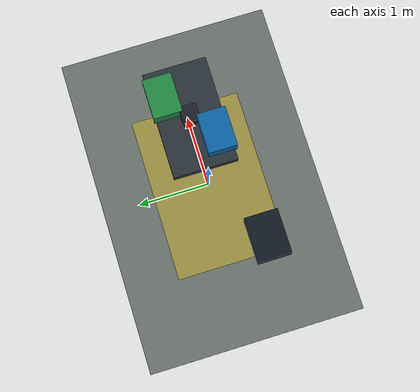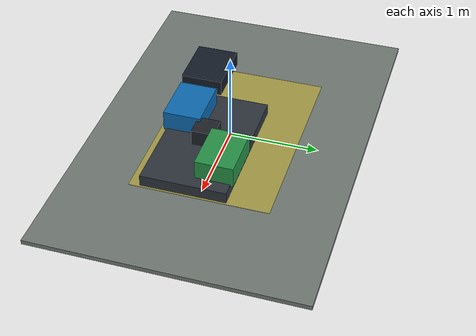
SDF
<?xml version="1.0"?>
<sdf version="1.10">
  <world name="factory_cell">
    <physics name="default_physics" type="ode">
      <max_step_size>0.001</max_step_size>
      <real_time_factor>1.0</real_time_factor>
    </physics>

    <gravity>0 0 -9.81</gravity>

    <light name="key_light" type="directional">
      <pose>0 0 5 0.8 0.0 0.6</pose>
      <diffuse>0.9 0.9 0.85 1</diffuse>
      <specular>0.2 0.2 0.2 1</specular>
      <direction>-0.5 0.3 -1.0</direction>
    </light>

    <model name="floor">
      <static>true</static>
      <link name="link">
        <visual name="visual">
          <geometry>
            <box>
              <size>4.5 3.0 0.05</size>
            </box>
          </geometry>
          <material>
            <diffuse>0.45 0.48 0.46 1</diffuse>
          </material>
        </visual>
        <collision name="collision">
          <geometry>
            <box>
              <size>4.5 3.0 0.05</size>
            </box>
          </geometry>
        </collision>
      </link>
      <pose>0 0 -0.025 0 0 0</pose>
    </model>

    <model name="safety_zone_marker">
      <static>true</static>
      <link name="link">
        <visual name="visual">
          <geometry>
            <box>
              <size>2.3 1.55 0.01</size>
            </box>
          </geometry>
          <material>
            <diffuse>0.95 0.82 0.10 0.45</diffuse>
          </material>
        </visual>
      </link>
      <pose>0 0 0.012 0 0 0</pose>
    </model>

    <model name="inspection_table">
      <static>true</static>
      <link name="link">
        <visual name="table_top">
          <pose>0 0 0.52 0 0 0</pose>
          <geometry>
            <box>
              <size>1.5 0.9 0.12</size>
            </box>
          </geometry>
          <material>
            <diffuse>0.18 0.21 0.24 1</diffuse>
          </material>
        </visual>
        <collision name="table_top_collision">
          <pose>0 0 0.52 0 0 0</pose>
          <geometry>
            <box>
              <size>1.5 0.9 0.12</size>
            </box>
          </geometry>
        </collision>
        <visual name="pedestal">
          <pose>0 0 0.25 0 0 0</pose>
          <geometry>
            <box>
              <size>0.24 0.24 1.0</size>
            </box>
          </geometry>
          <material>
            <diffuse>0.12 0.14 0.16 1</diffuse>
          </material>
        </visual>
      </link>
      <pose>0.85 0 0 0 0 0</pose>
    </model>

    <model name="pick_bin">
      <static>true</static>
      <link name="link">
        <visual name="visual">
          <geometry>
            <box>
              <size>0.56 0.40 0.22</size>
            </box>
          </geometry>
          <material>
            <diffuse>0.05 0.42 0.70 1</diffuse>
          </material>
        </visual>
      </link>
      <pose>0.52 -0.28 0.67 0 0 0</pose>
    </model>

    <model name="place_bin">
      <static>true</static>
      <link name="link">
        <visual name="visual">
          <geometry>
            <box>
              <size>0.56 0.40 0.22</size>
            </box>
          </geometry>
          <material>
            <diffuse>0.15 0.58 0.28 1</diffuse>
          </material>
        </visual>
      </link>
      <pose>1.18 0.28 0.67 0 0 0</pose>
    </model>

    <model name="yahboom_mobile_base_proxy">
      <pose>-0.95 -0.55 0.12 0 0 0</pose>
      <link name="base_link">
        <visual name="chassis">
          <geometry>
            <box>
              <size>0.64 0.48 0.18</size>
            </box>
          </geometry>
          <material>
            <diffuse>0.08 0.11 0.16 1</diffuse>
          </material>
        </visual>
        <collision name="chassis_collision">
          <geometry>
            <box>
              <size>0.64 0.48 0.18</size>
            </box>
          </geometry>
        </collision>
      </link>
    </model>
  </world>
</sdf>
